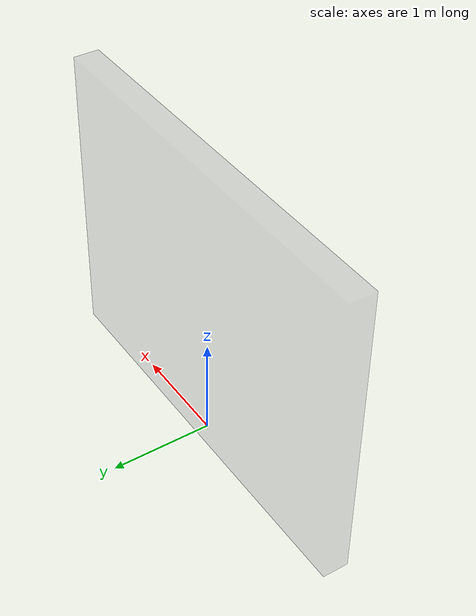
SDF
<?xml version="1.0" ?>
<sdf version="1.6">
  <model name="wall_exterior">
    <static>true</static>
    <link name="link">
      <pose>0 0 1.5 0 0 0</pose>
      <collision name="collision">
        <geometry>
          <box>
            <size>4.0 0.25 3.0</size>
          </box>
        </geometry>
      </collision>
      <visual name="visual">
        <geometry>
          <box>
            <size>4.0 0.25 3.0</size>
          </box>
        </geometry>
        <material>
          <ambient>0.35 0.35 0.38 1</ambient>
          <diffuse>0.35 0.35 0.38 1</diffuse>
          <specular>0.2 0.2 0.2 1</specular>
        </material>
        <transparency>0.85</transparency>
      </visual>
    </link>
  </model>
</sdf>
